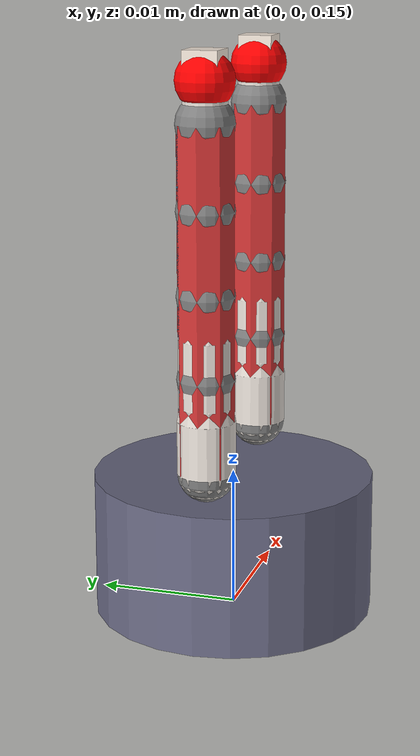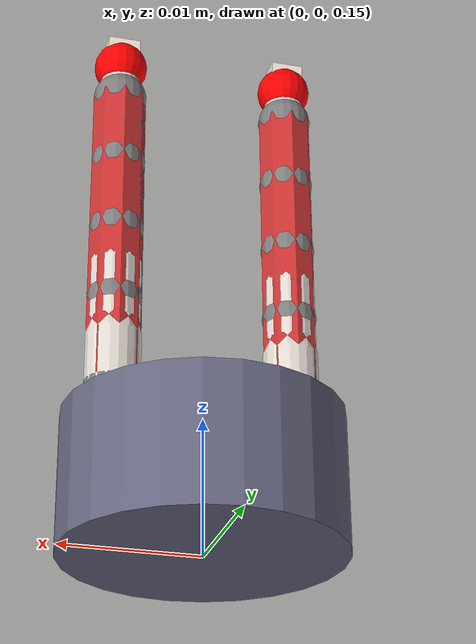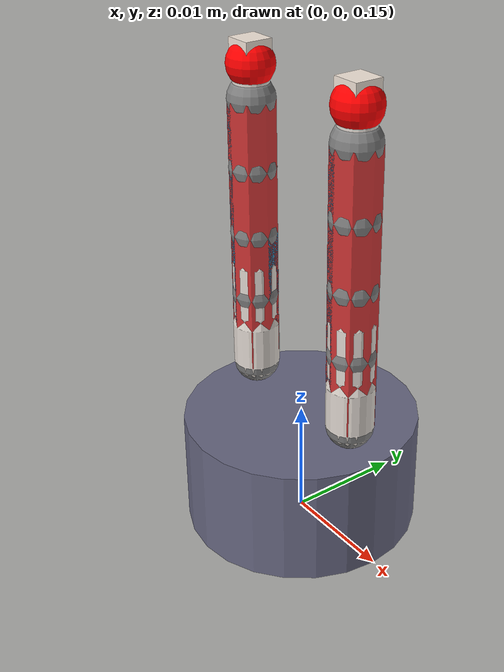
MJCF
<?xml version="1.0" encoding="utf-8"?>
<mujoco model="GD-20260128-0046">

    <compiler angle="radian" autolimits="true" meshdir="meshes"/>

    <option timestep="0.002" iterations="50" solver="Newton" tolerance="1e-10">
        <flag warmstart="enable"/>
    </option>

    <size nconmax="500" njmax="500" nstack="5000000"/>

    <visual>
        <headlight diffuse="0.6 0.6 0.6" ambient="0.3 0.3 0.3" specular="0.1 0.1 0.1"/>
        <rgba haze="0.15 0.25 0.35 1"/>
        <global azimuth="120" elevation="-20"/>
    </visual>

    <default>
        <default class="gripper">
            <geom type="capsule" condim="4" friction="0.6 0.003 0.0001"
                  rgba="0.88 0.85 0.82 1" margin="0.001"/>
            <joint type="hinge" limited="true" range="-1.57 1.57"
                   stiffness="0.04" damping="0.12"
                   armature="0.001"/>
        </default>
        <default class="friction_pad">
            <geom type="box" condim="4" friction="0.72 0.003 0.0001"
                  rgba="0.95 0.9 0.85 1" margin="0.0005"/>
        </default>
        <default class="palm">
            <geom type="cylinder" rgba="0.4 0.4 0.5 1" friction="0.6 0.003 0.0001"/>
        </default>
        <default class="test_object">
            <geom condim="4" friction="0.6 0.005 0.0001" rgba="1 0.3 0.3 1"/>
        </default>
    </default>

    <asset>
        <texture type="skybox" builtin="gradient" rgb1="0.3 0.5 0.7" rgb2="0 0 0" width="512" height="3072"/>
        <texture type="2d" name="groundplane" builtin="checker" mark="edge" rgb1="0.2 0.3 0.4" rgb2="0.1 0.2 0.3"
                 markrgb="0.8 0.8 0.8" width="300" height="300"/>
        <material name="groundplane" texture="groundplane" texuniform="true" texrepeat="5 5" reflectance="0.2"/>
        <material name="finger_mat" rgba="0.88 0.85 0.82 1" specular="0.3" shininess="0.5"/>
        <material name="palm_mat" rgba="0.4 0.4 0.5 1" specular="0.5" shininess="0.8"/>
        <material name="pad_mat" rgba="0.95 0.9 0.85 1" specular="0.2" shininess="0.3"/>
    </asset>

    <worldbody>

        <geom name="ground" type="plane" size="0.5 0.5 0.1" material="groundplane" condim="3"/>
        <light pos="0 0 1.5" dir="0 0 -1" directional="true"/>
        <light pos="0.5 0.5 1" dir="-0.5 -0.5 -1" diffuse="0.3 0.3 0.3"/>

        <body name="palm" pos="0 0 0.15">
            <geom class="palm" name="palm_geom" size="0.0100 0.0050"
                  pos="0 0 0.0050" material="palm_mat"/>

            <body name="finger_0_base" pos="0.0065 0.0000 0.0100">
                <joint class="gripper" name="finger_0_base_joint" axis="0 1 0"
                       stiffness="0.0400"
                       damping="0.1200"/>
                <site name="finger_0_site_0" pos="0 0 0.002" size="0.002"/>
                <geom class="gripper" name="finger_0_seg_0"
                      fromto="0 0 0.0020 0 0 0.0057"
                      size="0.0020" material="finger_mat"/>

                <body name="finger_0_seg_1" pos="0 0 0.0057">
                    <joint class="gripper" name="finger_0_joint_1" axis="0 1 0"
                           stiffness="0.0340" damping="0.0960"/>
                    <geom class="gripper" name="finger_0_seg_1_geom"
                          fromto="0 0 0.001 0 0 0.0057"
                          size="0.0019" material="finger_mat"/>
                    <site name="finger_0_site_1" pos="0 0 0.0029" size="0.002"/>

                <body name="finger_0_seg_2" pos="0 0 0.0057">
                    <joint class="gripper" name="finger_0_joint_2" axis="0 1 0"
                           stiffness="0.0280" damping="0.0720"/>
                    <geom class="gripper" name="finger_0_seg_2_geom"
                          fromto="0 0 0.001 0 0 0.0057"
                          size="0.0018" material="finger_mat"/>
                    <site name="finger_0_site_2" pos="0 0 0.0029" size="0.002"/>

                <body name="finger_0_seg_3" pos="0 0 0.0057">
                    <joint class="gripper" name="finger_0_joint_3" axis="0 1 0"
                           stiffness="0.0220" damping="0.0480"/>
                    <geom class="gripper" name="finger_0_seg_3_geom"
                          fromto="0 0 0.001 0 0 0.0057"
                          size="0.0017" material="finger_mat"/>
                    <site name="finger_0_site_3" pos="0 0 0.0029" size="0.002"/>

                <body name="finger_0_seg_4" pos="0 0 0.0057">
                    <joint class="gripper" name="finger_0_joint_4" axis="0 1 0"
                           stiffness="0.0160" damping="0.0240"/>
                    <geom class="gripper" name="finger_0_seg_4_geom"
                          fromto="0 0 0.001 0 0 0.0057"
                          size="0.0015" material="finger_mat"/>
                    <site name="finger_0_site_4" pos="0 0 0.0029" size="0.002"/>
                    <geom class="friction_pad" name="finger_0_pad"
                          pos="0 0 0.0067" size="0.0012 0.0012 0.001"
                          material="pad_mat"/>
                    <site name="finger_0_tip" pos="0 0 0.0057" size="0.002" rgba="1 0 0 1"/>
                </body>
                </body>
                </body>
                </body>
            </body>

            <body name="finger_1_base" pos="-0.0065 0.0000 0.0100">
                <joint class="gripper" name="finger_1_base_joint" axis="0 1 0"
                       stiffness="0.0400"
                       damping="0.1200"/>
                <site name="finger_1_site_0" pos="0 0 0.002" size="0.002"/>
                <geom class="gripper" name="finger_1_seg_0"
                      fromto="0 0 0.0020 0 0 0.0057"
                      size="0.0020" material="finger_mat"/>

                <body name="finger_1_seg_1" pos="0 0 0.0057">
                    <joint class="gripper" name="finger_1_joint_1" axis="0 1 0"
                           stiffness="0.0340" damping="0.0960"/>
                    <geom class="gripper" name="finger_1_seg_1_geom"
                          fromto="0 0 0.001 0 0 0.0057"
                          size="0.0019" material="finger_mat"/>
                    <site name="finger_1_site_1" pos="0 0 0.0029" size="0.002"/>

                <body name="finger_1_seg_2" pos="0 0 0.0057">
                    <joint class="gripper" name="finger_1_joint_2" axis="0 1 0"
                           stiffness="0.0280" damping="0.0720"/>
                    <geom class="gripper" name="finger_1_seg_2_geom"
                          fromto="0 0 0.001 0 0 0.0057"
                          size="0.0018" material="finger_mat"/>
                    <site name="finger_1_site_2" pos="0 0 0.0029" size="0.002"/>

                <body name="finger_1_seg_3" pos="0 0 0.0057">
                    <joint class="gripper" name="finger_1_joint_3" axis="0 1 0"
                           stiffness="0.0220" damping="0.0480"/>
                    <geom class="gripper" name="finger_1_seg_3_geom"
                          fromto="0 0 0.001 0 0 0.0057"
                          size="0.0017" material="finger_mat"/>
                    <site name="finger_1_site_3" pos="0 0 0.0029" size="0.002"/>

                <body name="finger_1_seg_4" pos="0 0 0.0057">
                    <joint class="gripper" name="finger_1_joint_4" axis="0 1 0"
                           stiffness="0.0160" damping="0.0240"/>
                    <geom class="gripper" name="finger_1_seg_4_geom"
                          fromto="0 0 0.001 0 0 0.0057"
                          size="0.0015" material="finger_mat"/>
                    <site name="finger_1_site_4" pos="0 0 0.0029" size="0.002"/>
                    <geom class="friction_pad" name="finger_1_pad"
                          pos="0 0 0.0067" size="0.0012 0.0012 0.001"
                          material="pad_mat"/>
                    <site name="finger_1_tip" pos="0 0 0.0057" size="0.002" rgba="1 0 0 1"/>
                </body>
                </body>
                </body>
                </body>
            </body>
        </body>
    </worldbody>

    <tendon>
        <spatial name="finger_0_flexor" limited="true" range="0 0.15"
                 width="0.002" rgba="0.8 0.2 0.2 1" frictionloss="0.1">
            <site site="finger_0_site_0"/>
            <site site="finger_0_site_1"/>
            <site site="finger_0_site_2"/>
            <site site="finger_0_site_3"/>
            <site site="finger_0_site_4"/>
        </spatial>
        <spatial name="finger_0_extensor" limited="true" range="0 0.15"
                 width="0.002" rgba="0.2 0.6 0.8 1" frictionloss="0.1">
            <site site="finger_0_site_4"/>
            <site site="finger_0_site_3"/>
            <site site="finger_0_site_2"/>
            <site site="finger_0_site_1"/>
            <site site="finger_0_site_0"/>
        </spatial>
        <spatial name="finger_1_flexor" limited="true" range="0 0.15"
                 width="0.002" rgba="0.8 0.2 0.2 1" frictionloss="0.1">
            <site site="finger_1_site_0"/>
            <site site="finger_1_site_1"/>
            <site site="finger_1_site_2"/>
            <site site="finger_1_site_3"/>
            <site site="finger_1_site_4"/>
        </spatial>
        <spatial name="finger_1_extensor" limited="true" range="0 0.15"
                 width="0.002" rgba="0.2 0.6 0.8 1" frictionloss="0.1">
            <site site="finger_1_site_4"/>
            <site site="finger_1_site_3"/>
            <site site="finger_1_site_2"/>
            <site site="finger_1_site_1"/>
            <site site="finger_1_site_0"/>
        </spatial>
    </tendon>

    <actuator>
        <motor name="finger_0_flexor_motor" tendon="finger_0_flexor"
               gear="18" ctrllimited="true" ctrlrange="0 1"/>
        <motor name="finger_0_extensor_motor" tendon="finger_0_extensor"
               gear="9" ctrllimited="true" ctrlrange="0 0.5"/>
        <motor name="finger_1_flexor_motor" tendon="finger_1_flexor"
               gear="18" ctrllimited="true" ctrlrange="0 1"/>
        <motor name="finger_1_extensor_motor" tendon="finger_1_extensor"
               gear="9" ctrllimited="true" ctrlrange="0 0.5"/>
    </actuator>

    <sensor>
        <jointpos name="finger_0_pos" joint="finger_0_base_joint"/>
        <jointvel name="finger_0_vel" joint="finger_0_base_joint"/>
        <tendonpos name="finger_0_flexor_len" tendon="finger_0_flexor"/>
        <tendonvel name="finger_0_flexor_vel" tendon="finger_0_flexor"/>
        <jointpos name="finger_1_pos" joint="finger_1_base_joint"/>
        <jointvel name="finger_1_vel" joint="finger_1_base_joint"/>
        <tendonpos name="finger_1_flexor_len" tendon="finger_1_flexor"/>
        <tendonvel name="finger_1_flexor_vel" tendon="finger_1_flexor"/>
    </sensor>

</mujoco>
